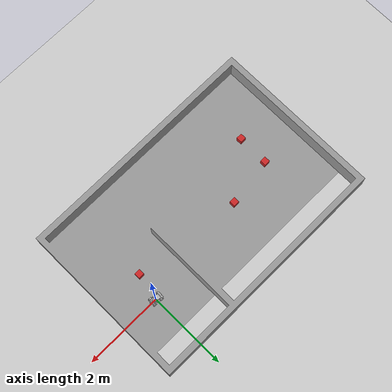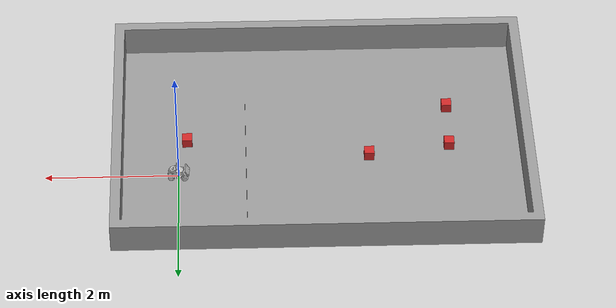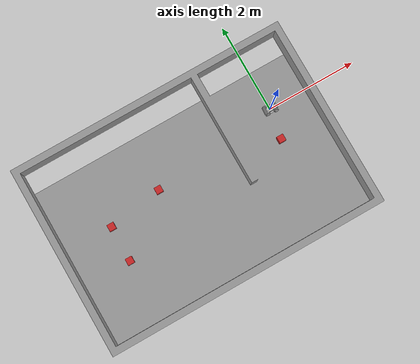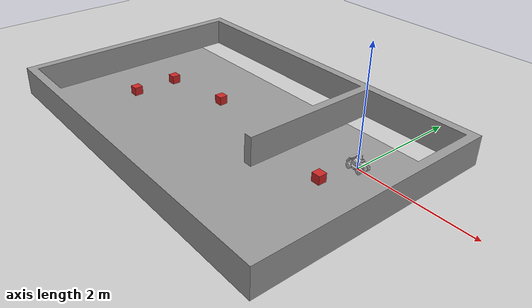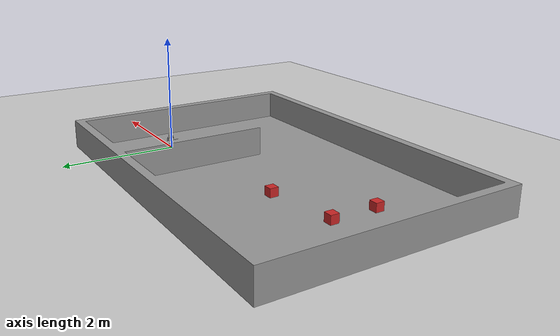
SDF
<sdf version="1.7">
 <world name="default">
  <light name="sun" type="directional">
   <cast_shadows>0</cast_shadows>
   <pose>0 0 10 0 -0 0</pose>
   <diffuse>0.8 0.8 0.8 1</diffuse>
   <specular>0.2 0.2 0.2 1</specular>
   <attenuation>
    <range>1000</range>
    <constant>0.9</constant>
    <linear>0.01</linear>
    <quadratic>0.001</quadratic>
   </attenuation>
   <direction>-0.5 0.1 -0.9</direction>
   <spot><inner_angle>0</inner_angle><outer_angle>0</outer_angle><falloff>0</falloff></spot>
  </light>
  <model name="ground_plane">
   <static>1</static>
   <link name="link">
    <collision name="collision">
     <geometry><plane><normal>0 0 1</normal><size>100 100</size></plane></geometry>
     <surface><friction><ode><mu>100</mu><mu2>50</mu2></ode></friction></surface>
    </collision>
    <visual name="visual">
     <cast_shadows>0</cast_shadows>
     <geometry><plane><normal>0 0 1</normal><size>100 100</size></plane></geometry>
     <material>
      <script><uri>file://media/materials/scripts/gazebo.material</uri><name>Gazebo/Grey</name></script>
     </material>
    </visual>
   </link>
  </model>
  <gravity>0 0 -9.8</gravity>
  <scene><ambient>0.4 0.4 0.4 1</ambient><background>0.7 0.7 0.7 1</background><shadows>1</shadows></scene>
  <model name="simple">
   <link name="link_0">
    <inertial>
     <mass>100</mass>
     <inertia>
      <ixx>0.166667</ixx>
      <ixy>0</ixy>
      <ixz>0</ixz>
      <iyy>0.166667</iyy>
      <iyz>0</iyz>
      <izz>0.166667</izz>
     </inertia>
    </inertial>
    <pose>0 0 0 1.57 -0 0</pose>
    <visual name="visual">
     <geometry><mesh><uri>model://simple.stl</uri><scale>0.001 0.001 0.001</scale></mesh></geometry>
     <material>
      <lighting>1</lighting>
      <script><uri>file://media/materials/scripts/gazebo.material</uri><name>Gazebo/Grey</name></script>
      <shader type="pixel"><normal_map>__default__</normal_map></shader>
      <ambient>0.3 0.3 0.3 1</ambient>
      <diffuse>0.7 0.7 0.7 1</diffuse>
      <specular>0.01 0.01 0.01 1</specular>
      <emissive>0 0 0 1</emissive>
     </material>
    </visual>
    <collision name="collision">
     <geometry><mesh><uri>model://simple.stl</uri><scale>0.001 0.001 0.001</scale></mesh></geometry>
     <surface><friction><ode><mu>100</mu><mu2>50</mu2></ode></friction></surface>
    </collision>
   </link>
   <static>1</static>
   <pose>-5.16281 -2.68744 -0.054811 0 -0 0</pose>
  </model>
  <magnetic_field>6e-06 2.3e-05 -4.2e-05</magnetic_field>
  <atmosphere type="adiabatic"/>
  <physics type="ode">
   <max_step_size>0.001</max_step_size>
   <real_time_factor>1</real_time_factor>
   <real_time_update_rate>1000</real_time_update_rate>
  </physics>
  <audio><device>default</device></audio>
  <spherical_coordinates>
   <surface_model>EARTH_WGS84</surface_model>
   <latitude_deg>0</latitude_deg>
   <longitude_deg>0</longitude_deg>
   <elevation>0</elevation>
   <heading_deg>0</heading_deg>
  </spherical_coordinates>
  <model name="limo_gazebosim">
   <link name="base_link">
    <inertial>
     <pose>0.007905 0 -0.000592 0 -0 0</pose>
     <mass>2.3657</mass>
     <inertia>
      <ixx>0.240307</ixx>
      <ixy>0</ixy>
      <ixz>8.71335e-05</ixz>
      <iyy>0.961926</iyy>
      <iyz>0</iyz>
      <izz>0.961621</izz>
     </inertia>
    </inertial>
    <collision name="base_link_collision"><geometry><box><size>0.13 0.12 0.1</size></box></geometry></collision>
    <collision name="base_link_fixed_joint_lump__depth_camera_collision_collision_1">
     <pose>0.084 0 0.03 0 -0 0</pose>
     <geometry><box><size>0.02 0.06 0.015</size></box></geometry>
    </collision>
    <collision name="base_link_fixed_joint_lump__imu_collision_collision_2">
     <pose>0 0 -0.1 0 -0 0</pose>
     <geometry><box><size>0.001 0.001 0.001</size></box></geometry>
    </collision>
    <collision name="base_link_fixed_joint_lump__laser_collision_collision_3">
     <pose>0.103 0 -0.034 0 -0 0</pose>
     <geometry><cylinder><length>0.016</length><radius>0.032</radius></cylinder></geometry>
    </collision>
    <visual name="base_link_visual">
     <pose>0 0 -0.15 0 -0 1.57</pose>
     <geometry>
      <mesh>
       <scale>1 1 1</scale>
       <uri>file:///opt/ros/lcas/install/limo_description/share/limo_description/meshes/limo_base_lite.dae</uri>
      </mesh>
     </geometry>
    </visual>
    <visual name="base_link_fixed_joint_lump__depth_camera_visual_visual_1">
     <pose>0.084 0 0.03 0 -0 0</pose>
     <geometry><box><size>0.02 0.06 0.015</size></box></geometry>
    </visual>
    <visual name="base_link_fixed_joint_lump__imu_visual_visual_2">
     <pose>0 0 -0.1 0 -0 0</pose>
     <geometry><box><size>0.001 0.001 0.001</size></box></geometry>
    </visual>
    <visual name="base_link_fixed_joint_lump__laser_visual_visual_3">
     <pose>0.103 0 -0.034 0 -0 0</pose>
     <geometry><cylinder><length>0.01</length><radius>0.02</radius></cylinder></geometry>
    </visual>
    <sensor name="sensor_camera" type="depth">
     <always_on>0</always_on>
     <update_rate>1</update_rate>
     <camera name="limo_camera">
      <horizontal_fov>1.23918</horizontal_fov>
      <image><width>640</width><height>480</height><format>B8G8R8</format></image>
      <clip><near>0.1</near><far>100</far></clip>
     </camera>
     <plugin name="gazebo_ros_depth_camera_sensor" filename="libgazebo_ros_camera.so">
      <ros>
       <namespace>/limo</namespace>
       <remapping>limo_camera/image_raw:=limo_camera/image</remapping>
       <remapping>limo_camera/image_depth:=limo_camera/depth/camera_image_depth</remapping>
       <remapping>limo_camera/camera_info:=limo_camera/camera_info_raw</remapping>
       <remapping>limo_camera/camera_info_depth:=limo_camera/camera_info_depth</remapping>
       <remapping>limo_camera/points:=limo_camera/camera_points</remapping>
      </ros>
      <camera_name>depth_camera_link</camera_name>
      <frame_name>depth_link</frame_name>
      <hack_baseline>0.07</hack_baseline>
      <min_depth>0.001</min_depth>
     </plugin>
     <pose>0.084 0 0.03 0 -0 0</pose>
    </sensor>
    <sensor name="twr_imu" type="imu">
     <always_on>1</always_on>
     <update_rate>100</update_rate>
     <visualize>1</visualize>
     <imu>
      <angular_velocity>
       <x><noise type="gaussian"><mean>0</mean><stddev>0.0002</stddev></noise></x>
       <y><noise type="gaussian"><mean>0</mean><stddev>0.0002</stddev></noise></y>
       <z><noise type="gaussian"><mean>0</mean><stddev>0.0002</stddev></noise></z>
      </angular_velocity>
      <linear_acceleration>
       <x><noise type="gaussian"><mean>0</mean><stddev>0.017</stddev></noise></x>
       <y><noise type="gaussian"><mean>0</mean><stddev>0.017</stddev></noise></y>
       <z><noise type="gaussian"><mean>0</mean><stddev>0.017</stddev></noise></z>
      </linear_acceleration>
      <orientation>
       <x><noise type="gaussian"><mean>0.0</mean><stddev>2e-3</stddev></noise></x>
       <y><noise type="gaussian"><mean>0.0</mean><stddev>2e-3</stddev></noise></y>
       <z><noise type="gaussian"><mean>0.0</mean><stddev>2e-3</stddev></noise></z>
      </orientation>
     </imu>
     <plugin name="two_wheeled_robot_imu" filename="libgazebo_ros_imu_sensor.so">
      <initial_orientation_as_reference>0</initial_orientation_as_reference>
      <frame_name>imu_link</frame_name>
      <ros><namespace>/</namespace><remapping>~/out:=imu</remapping></ros>
     </plugin>
     <pose>0 0 -0.1 0 -0 0</pose>
    </sensor>
    <sensor name="laser" type="ray">
     <always_on>1</always_on>
     <visualize>1</visualize>
     <update_rate>8</update_rate>
     <ray>
      <scan>
       <horizontal>
        <samples>292</samples>
        <resolution>1</resolution>
        <min_angle>-2</min_angle>
        <max_angle>2</max_angle>
       </horizontal>
       <vertical><samples>1</samples><min_angle>0</min_angle><max_angle>0</max_angle></vertical>
      </scan>
      <range><min>0.12</min><max>8</max><resolution>0.02</resolution></range>
      <noise><type>gaussian</type><mean>0</mean><stddev>0.01</stddev></noise>
     </ray>
     <plugin name="scan" filename="libgazebo_ros_ray_sensor.so">
      <ros><remapping>~/out:=scan</remapping></ros>
      <output_type>sensor_msgs/LaserScan</output_type>
      <frame_name>laser_link</frame_name>
     </plugin>
     <pose>0.103 0 -0.034 0 -0 0</pose>
    </sensor>
   </link>
   <joint name="front_left_wheel" type="revolute">
    <pose relative_to="base_link">0.1 0.065 -0.1 0 -0 0</pose>
    <parent>base_link</parent>
    <child>front_left_wheel_link</child>
    <axis>
     <xyz>0 1 0</xyz>
     <limit><lower>-1e+16</lower><upper>1e+16</upper></limit>
     <dynamics><spring_reference>0</spring_reference><spring_stiffness>0</spring_stiffness></dynamics>
    </axis>
    <physics><ode><limit><cfm>0</cfm><erp>0.2</erp></limit></ode></physics>
   </joint>
   <link name="front_left_wheel_link">
    <pose relative_to="front_left_wheel">0 0 0 0 -0 0</pose>
    <inertial>
     <mass>0.5</mass>
     <inertia><ixx>0.01055</ixx><ixy>0</ixy><ixz>0</ixz><iyy>0.00075</iyy><iyz>0</iyz><izz>0.01055</izz></inertia>
    </inertial>
    <collision name="front_left_wheel_link_collision">
     <pose>0 0.0225 0 1.57 -0 0</pose>
     <geometry><cylinder><length>0.045</length><radius>0.045</radius></cylinder></geometry>
    </collision>
    <visual name="front_left_wheel_link_visual">
     <geometry>
      <mesh>
       <scale>1 1 1</scale>
       <uri>file:///opt/ros/lcas/install/limo_description/share/limo_description/meshes/limo_wheel_lite.dae</uri>
      </mesh>
     </geometry>
    </visual>
   </link>
   <joint name="front_right_wheel" type="revolute">
    <pose relative_to="base_link">0.1 -0.065 -0.1 3.14159 -0 0</pose>
    <parent>base_link</parent>
    <child>front_right_wheel_link</child>
    <axis>
     <xyz>0 -1 0</xyz>
     <limit><lower>-1e+16</lower><upper>1e+16</upper></limit>
     <dynamics><spring_reference>0</spring_reference><spring_stiffness>0</spring_stiffness></dynamics>
    </axis>
    <physics><ode><limit><cfm>0</cfm><erp>0.2</erp></limit></ode></physics>
   </joint>
   <link name="front_right_wheel_link">
    <pose relative_to="front_right_wheel">0 0 0 0 -0 0</pose>
    <inertial>
     <mass>0.5</mass>
     <inertia><ixx>0.01055</ixx><ixy>0</ixy><ixz>0</ixz><iyy>0.00075</iyy><iyz>0</iyz><izz>0.01055</izz></inertia>
    </inertial>
    <collision name="front_right_wheel_link_collision">
     <pose>0 0.0225 0 1.57 -0 0</pose>
     <geometry><cylinder><length>0.045</length><radius>0.045</radius></cylinder></geometry>
    </collision>
    <visual name="front_right_wheel_link_visual">
     <geometry>
      <mesh>
       <scale>1 1 1</scale>
       <uri>file:///opt/ros/lcas/install/limo_description/share/limo_description/meshes/limo_wheel_lite.dae</uri>
      </mesh>
     </geometry>
    </visual>
   </link>
   <joint name="rear_left_wheel" type="revolute">
    <pose relative_to="base_link">-0.1 0.065 -0.1 0 -0 0</pose>
    <parent>base_link</parent>
    <child>rear_left_wheel_link</child>
    <axis>
     <xyz>0 1 0</xyz>
     <limit><lower>-1e+16</lower><upper>1e+16</upper></limit>
     <dynamics><spring_reference>0</spring_reference><spring_stiffness>0</spring_stiffness></dynamics>
    </axis>
    <physics><ode><limit><cfm>0</cfm><erp>0.2</erp></limit></ode></physics>
   </joint>
   <link name="rear_left_wheel_link">
    <pose relative_to="rear_left_wheel">0 0 0 0 -0 0</pose>
    <inertial>
     <mass>0.5</mass>
     <inertia><ixx>0.01055</ixx><ixy>0</ixy><ixz>0</ixz><iyy>0.00075</iyy><iyz>0</iyz><izz>0.01055</izz></inertia>
    </inertial>
    <collision name="rear_left_wheel_link_collision">
     <pose>0 0.0225 0 1.57 -0 0</pose>
     <geometry><cylinder><length>0.045</length><radius>0.045</radius></cylinder></geometry>
    </collision>
    <visual name="rear_left_wheel_link_visual">
     <geometry>
      <mesh>
       <scale>1 1 1</scale>
       <uri>file:///opt/ros/lcas/install/limo_description/share/limo_description/meshes/limo_wheel_lite.dae</uri>
      </mesh>
     </geometry>
    </visual>
   </link>
   <joint name="rear_right_wheel" type="revolute">
    <pose relative_to="base_link">-0.1 -0.065 -0.1 3.14159 -0 0</pose>
    <parent>base_link</parent>
    <child>rear_right_wheel_link</child>
    <axis>
     <xyz>0 -1 0</xyz>
     <limit><lower>-1e+16</lower><upper>1e+16</upper></limit>
     <dynamics><spring_reference>0</spring_reference><spring_stiffness>0</spring_stiffness></dynamics>
    </axis>
    <physics><ode><limit><cfm>0</cfm><erp>0.2</erp></limit></ode></physics>
   </joint>
   <link name="rear_right_wheel_link">
    <pose relative_to="rear_right_wheel">0 0 0 0 -0 0</pose>
    <inertial>
     <mass>0.5</mass>
     <inertia><ixx>0.01055</ixx><ixy>0</ixy><ixz>0</ixz><iyy>0.00075</iyy><iyz>0</iyz><izz>0.01055</izz></inertia>
    </inertial>
    <collision name="rear_right_wheel_link_collision">
     <pose>0 0.0225 0 1.57 -0 0</pose>
     <geometry><cylinder><length>0.045</length><radius>0.045</radius></cylinder></geometry>
    </collision>
    <visual name="rear_right_wheel_link_visual">
     <geometry>
      <mesh>
       <scale>1 1 1</scale>
       <uri>file:///opt/ros/lcas/install/limo_description/share/limo_description/meshes/limo_wheel_lite.dae</uri>
      </mesh>
     </geometry>
    </visual>
   </link>
   <static>0</static>
   <plugin name="four_diff_controller" filename="libgazebo_ros_diff_drive.so">
    <update_rate>50</update_rate>
    <num_wheel_pairs>2</num_wheel_pairs>
    <left_joint>front_left_wheel</left_joint>
    <right_joint>front_right_wheel</right_joint>
    <left_joint>rear_left_wheel</left_joint>
    <right_joint>rear_right_wheel</right_joint>
    <wheel_separation>0.172</wheel_separation>
    <wheel_diameter>0.09</wheel_diameter>
    <max_wheel_torque>20</max_wheel_torque>
    <max_wheel_acceleration>1.0</max_wheel_acceleration>
    <command_topic>cmd_vel</command_topic>
    <publish_odom>1</publish_odom>
    <publish_odom_tf>1</publish_odom_tf>
    <publish_wheel_tf>0</publish_wheel_tf>
    <odometry_topic>odom</odometry_topic>
    <odometry_frame>odom</odometry_frame>
    <robot_base_frame>base_link</robot_base_frame>
    <odometry_source>1</odometry_source>
   </plugin>
   <pose>0.002011 -0.002296 0.145018 0 -2e-06 -0.070601</pose>
  </model>
  <model name="red_box_2">
   <link name="link">
    <inertial>
     <mass>0.00143404</mass>
     <inertia>
      <ixx>3.23e-06</ixx>
      <ixy>0</ixy>
      <ixz>0</ixz>
      <iyy>2.96e-06</iyy>
      <iyz>0</iyz>
      <izz>2.96e-06</izz>
     </inertia>
    </inertial>
    <visual name="visual">
     <geometry><box><size>0.15 0.15 0.15</size></box></geometry>
     <material>
      <script><name>Gazebo/Red</name><uri>file://media/materials/scripts/gazebo.material</uri></script>
      <shader type="pixel"><normal_map>__default__</normal_map></shader>
      <ambient>1 0 0 1</ambient>
      <diffuse>1 0 0 1</diffuse>
      <specular>0.1 0.1 0.1 1</specular>
      <emissive>0 0 0 1</emissive>
     </material>
    </visual>
    <collision name="collision">
     <geometry><box><size>0.15 0.15 0.15</size></box></geometry>
     <surface>
      <friction>
       <ode><mu>1</mu><mu2>1</mu2><fdir1>0 0 0</fdir1><slip1>0</slip1><slip2>0</slip2></ode>
       <torsional>
        <coefficient>1</coefficient>
        <patch_radius>0</patch_radius>
        <surface_radius>0</surface_radius>
        <use_patch_radius>1</use_patch_radius>
        <ode><slip>0</slip></ode>
       </torsional>
      </friction>
      <bounce><restitution_coefficient>0</restitution_coefficient><threshold>1e+06</threshold></bounce>
      <contact>
       <collide_without_contact>0</collide_without_contact>
       <collide_without_contact_bitmask>1</collide_without_contact_bitmask>
       <collide_bitmask>1</collide_bitmask>
       <ode>
        <soft_cfm>0</soft_cfm>
        <soft_erp>0.2</soft_erp>
        <kp>1e+13</kp>
        <kd>1</kd>
        <max_vel>0.01</max_vel>
        <min_depth>0</min_depth>
       </ode>
       <bullet>
        <split_impulse>1</split_impulse>
        <split_impulse_penetration_threshold>-0.01</split_impulse_penetration_threshold>
        <soft_cfm>0</soft_cfm>
        <soft_erp>0.2</soft_erp>
        <kp>1e+13</kp>
        <kd>1</kd>
       </bullet>
      </contact>
     </surface>
    </collision>
   </link>
   <static>0</static>
   <pose>-4.10573 -1.31673 0.074995 0 6.5e-05 -1e-06</pose>
  </model>
  <model name="red_box">
   <link name="link">
    <inertial>
     <mass>0.00143404</mass>
     <inertia>
      <ixx>3.23e-06</ixx>
      <ixy>0</ixy>
      <ixz>0</ixz>
      <iyy>2.96e-06</iyy>
      <iyz>0</iyz>
      <izz>2.96e-06</izz>
     </inertia>
    </inertial>
    <visual name="visual">
     <geometry><box><size>0.15 0.15 0.15</size></box></geometry>
     <material>
      <script><name>Gazebo/Red</name><uri>file://media/materials/scripts/gazebo.material</uri></script>
      <shader type="pixel"><normal_map>__default__</normal_map></shader>
      <ambient>1 0 0 1</ambient>
      <diffuse>1 0 0 1</diffuse>
      <specular>0.1 0.1 0.1 1</specular>
      <emissive>0 0 0 1</emissive>
     </material>
    </visual>
    <collision name="collision">
     <geometry><box><size>0.15 0.15 0.15</size></box></geometry>
     <surface>
      <friction>
       <ode><mu>1</mu><mu2>1</mu2><fdir1>0 0 0</fdir1><slip1>0</slip1><slip2>0</slip2></ode>
       <torsional>
        <coefficient>1</coefficient>
        <patch_radius>0</patch_radius>
        <surface_radius>0</surface_radius>
        <use_patch_radius>1</use_patch_radius>
        <ode><slip>0</slip></ode>
       </torsional>
      </friction>
      <bounce><restitution_coefficient>0</restitution_coefficient><threshold>1e+06</threshold></bounce>
      <contact>
       <collide_without_contact>0</collide_without_contact>
       <collide_without_contact_bitmask>1</collide_without_contact_bitmask>
       <collide_bitmask>1</collide_bitmask>
       <ode>
        <soft_cfm>0</soft_cfm>
        <soft_erp>0.2</soft_erp>
        <kp>1e+13</kp>
        <kd>1</kd>
        <max_vel>0.01</max_vel>
        <min_depth>0</min_depth>
       </ode>
       <bullet>
        <split_impulse>1</split_impulse>
        <split_impulse_penetration_threshold>-0.01</split_impulse_penetration_threshold>
        <soft_cfm>0</soft_cfm>
        <soft_erp>0.2</soft_erp>
        <kp>1e+13</kp>
        <kd>1</kd>
       </bullet>
      </contact>
     </surface>
    </collision>
   </link>
   <static>0</static>
   <pose>-2.8724 -0.332589 0.074995 -0 -6.5e-05 -3e-06</pose>
  </model>
  <model name="red_box_0">
   <link name="link">
    <inertial>
     <mass>0.00143404</mass>
     <inertia>
      <ixx>3.23e-06</ixx>
      <ixy>0</ixy>
      <ixz>0</ixz>
      <iyy>2.96e-06</iyy>
      <iyz>0</iyz>
      <izz>2.96e-06</izz>
     </inertia>
    </inertial>
    <visual name="visual">
     <geometry><box><size>0.15 0.15 0.15</size></box></geometry>
     <material>
      <script><name>Gazebo/Red</name><uri>file://media/materials/scripts/gazebo.material</uri></script>
      <shader type="pixel"><normal_map>__default__</normal_map></shader>
      <ambient>1 0 0 1</ambient>
      <diffuse>1 0 0 1</diffuse>
      <specular>0.1 0.1 0.1 1</specular>
      <emissive>0 0 0 1</emissive>
     </material>
    </visual>
    <collision name="collision">
     <geometry><box><size>0.15 0.15 0.15</size></box></geometry>
     <surface>
      <friction>
       <ode><mu>1</mu><mu2>1</mu2><fdir1>0 0 0</fdir1><slip1>0</slip1><slip2>0</slip2></ode>
       <torsional>
        <coefficient>1</coefficient>
        <patch_radius>0</patch_radius>
        <surface_radius>0</surface_radius>
        <use_patch_radius>1</use_patch_radius>
        <ode><slip>0</slip></ode>
       </torsional>
      </friction>
      <bounce><restitution_coefficient>0</restitution_coefficient><threshold>1e+06</threshold></bounce>
      <contact>
       <collide_without_contact>0</collide_without_contact>
       <collide_without_contact_bitmask>1</collide_without_contact_bitmask>
       <collide_bitmask>1</collide_bitmask>
       <ode>
        <soft_cfm>0</soft_cfm>
        <soft_erp>0.2</soft_erp>
        <kp>1e+13</kp>
        <kd>1</kd>
        <max_vel>0.01</max_vel>
        <min_depth>0</min_depth>
       </ode>
       <bullet>
        <split_impulse>1</split_impulse>
        <split_impulse_penetration_threshold>-0.01</split_impulse_penetration_threshold>
        <soft_cfm>0</soft_cfm>
        <soft_erp>0.2</soft_erp>
        <kp>1e+13</kp>
        <kd>1</kd>
       </bullet>
      </contact>
     </surface>
    </collision>
   </link>
   <static>0</static>
   <pose>-4.09199 -0.521206 0.074995 -0 -6.5e-05 -3e-06</pose>
  </model>
  <model name="red_box_1">
   <link name="link">
    <inertial>
     <mass>0.00143404</mass>
     <inertia>
      <ixx>3.23e-06</ixx>
      <ixy>0</ixy>
      <ixz>0</ixz>
      <iyy>2.96e-06</iyy>
      <iyz>0</iyz>
      <izz>2.96e-06</izz>
     </inertia>
    </inertial>
    <visual name="visual">
     <geometry><box><size>0.15 0.15 0.15</size></box></geometry>
     <material>
      <script><name>Gazebo/Red</name><uri>file://media/materials/scripts/gazebo.material</uri></script>
      <shader type="pixel"><normal_map>__default__</normal_map></shader>
      <ambient>1 0 0 1</ambient>
      <diffuse>1 0 0 1</diffuse>
      <specular>0.1 0.1 0.1 1</specular>
      <emissive>0 0 0 1</emissive>
     </material>
    </visual>
    <collision name="collision">
     <geometry><box><size>0.15 0.15 0.15</size></box></geometry>
     <surface>
      <friction>
       <ode><mu>1</mu><mu2>1</mu2><fdir1>0 0 0</fdir1><slip1>0</slip1><slip2>0</slip2></ode>
       <torsional>
        <coefficient>1</coefficient>
        <patch_radius>0</patch_radius>
        <surface_radius>0</surface_radius>
        <use_patch_radius>1</use_patch_radius>
        <ode><slip>0</slip></ode>
       </torsional>
      </friction>
      <bounce><restitution_coefficient>0</restitution_coefficient><threshold>1e+06</threshold></bounce>
      <contact>
       <collide_without_contact>0</collide_without_contact>
       <collide_without_contact_bitmask>1</collide_without_contact_bitmask>
       <collide_bitmask>1</collide_bitmask>
       <ode>
        <soft_cfm>0</soft_cfm>
        <soft_erp>0.2</soft_erp>
        <kp>1e+13</kp>
        <kd>1</kd>
        <max_vel>0.01</max_vel>
        <min_depth>0</min_depth>
       </ode>
       <bullet>
        <split_impulse>1</split_impulse>
        <split_impulse_penetration_threshold>-0.01</split_impulse_penetration_threshold>
        <soft_cfm>0</soft_cfm>
        <soft_erp>0.2</soft_erp>
        <kp>1e+13</kp>
        <kd>1</kd>
       </bullet>
      </contact>
     </surface>
    </collision>
   </link>
   <static>0</static>
   <pose>-0.130137 -0.668119 0.074995 0 -6.5e-05 -1e-06</pose>
  </model>
 </world>
</sdf>
